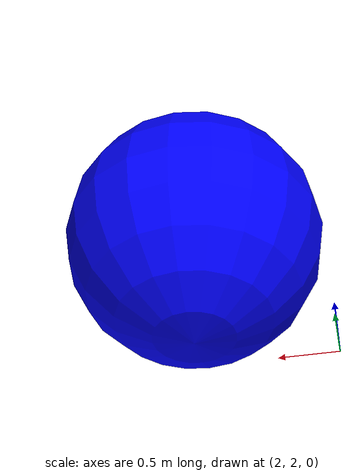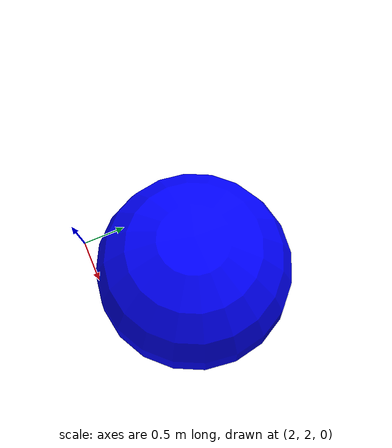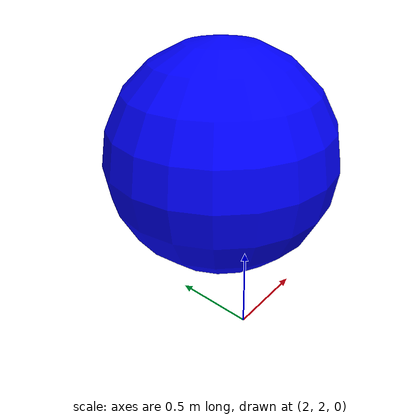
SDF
<?xml version="1.0"?>
<sdf version="1.6">
  <model name="blue_sphere">
    <pose>3 3 0.5 0 0 0</pose>

    <link name="link">

      <!-- 可视部分 -->
      <visual name="visual">
        <geometry>
          <sphere>
            <radius>1</radius>
          </sphere>
        </geometry>

        <material>
          <lighting>false</lighting>
          <ambient>0.0 0.0 1.0 1</ambient>
          <diffuse>0.0 0.0 1.0 1</diffuse>
          <specular>0 0 0 1</specular>
          <emissive>0.0 0.0 1.0 1</emissive>
        </material>
      </visual>

      <!-- 碰撞体 -->
      <collision name="collision">
        <geometry>
          <sphere>
            <radius>1</radius>
          </sphere>
        </geometry>
      </collision>

      <!-- 惯性 -->
      <inertial>
        <mass>1.0</mass>
        <inertia>
          <ixx>0.1</ixx>
          <iyy>0.1</iyy>
          <izz>0.1</izz>
        </inertia>
      </inertial>

    </link>
  </model>
</sdf>
